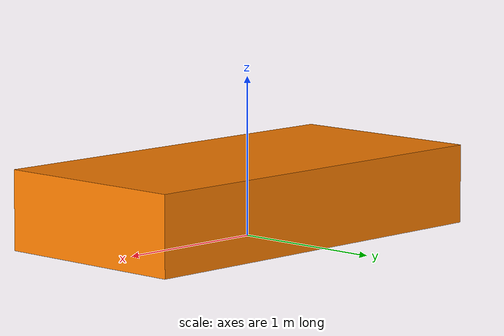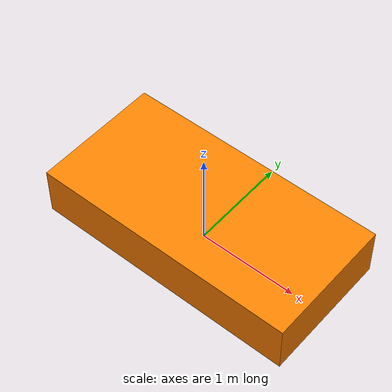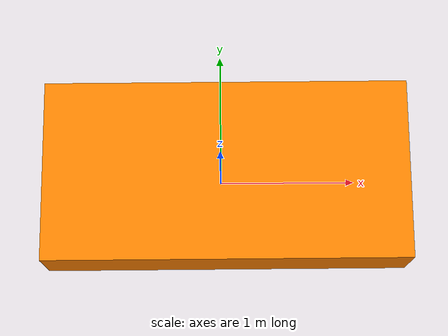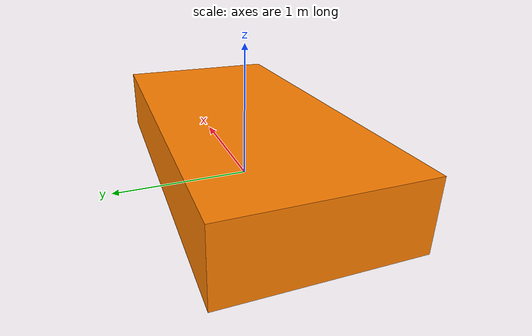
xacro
<?xml version="1.0"?>
<robot name="itls_robot" xmlns:xacro="http://www.ros.org/wiki/xacro">

  <!-- Define robot constants -->
  <xacro:property name="base_width" value="1.3005"/>
  <xacro:property name="base_length" value="4.136"/>
  <xacro:property name="base_height" value="0.5"/>
  <xacro:property name="base_link_to_front" value="2.3715"/>
  <xacro:property name="wheel_radius" value="0.14"/>
  <xacro:property name="base_length_actual" value="2.64"/>
  <xacro:property name="base_link_to_lidar_rear" value="-1.28"/>
  <xacro:property name="base_mass" value="100"/>

  <!-- Robot Base -->

  <link name="base_link">
    <origin xyz="0.0 0.0 ${wheel_radius}" rpy="0.0 0.0 ${pi/2.0}"/>
  </link>

  <link name="robot_center">
    <visual>
      <geometry>
        <box size="${base_length_actual} ${base_width} ${base_height}"/>
      </geometry>
      <material name="Orange">
        <color rgba="1.0 0.5 0 1.0"/>
      </material>
    </visual>
    <collision>
      <geometry>
        <box size="${base_length_actual} ${base_width} ${base_height}"/>
      </geometry>
    </collision>
    <xacro:box_inertia m="${base_mass}" w="${base_width}" d="${base_length}" h="${base_height}"/>
  </link>
  <joint name="base_link_T_robot_center" type="fixed">
    <parent link="base_link"/>
    <child link="robot_center"/>
    <origin xyz="${base_link_to_lidar_rear + base_length_actual/2.0} 0.0 ${base_height/2.0}" rpy="0.0 0.0 0.0"/>
  </joint>

  <link name="base_link_front"> </link>

  <joint name="base_link_T_base_link_front" type="fixed">
    <parent link="base_link"/>
    <child link="base_link_front"/>
    <origin xyz="${base_link_to_front} 0.0 0.0" rpy="0.0 0.0 0.0"/>
  </joint>

  <link name="base_link_back"> </link>

  <joint name="base_link_T_base_link_back" type="fixed">
    <parent link="base_link"/>
    <child link="base_link_back"/>
    <origin xyz="${base_link_to_front - base_length} 0.0 0.0" rpy="0.0 0.0 ${pi}"/>
  </joint>

  <!-- Robot Footprint -->

  <link name="base_footprint"/>
  <joint name="base_link_T_base_footprint" type="fixed">
    <parent link="base_link"/>
    <child link="base_footprint"/>
    <origin xyz="0.0 0.0 ${-wheel_radius}" rpy="0 0 0"/>
  </joint>

</robot>
